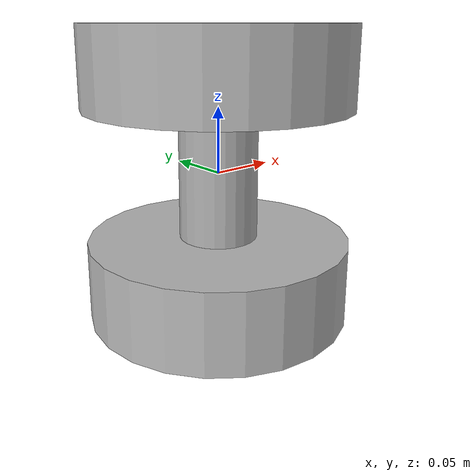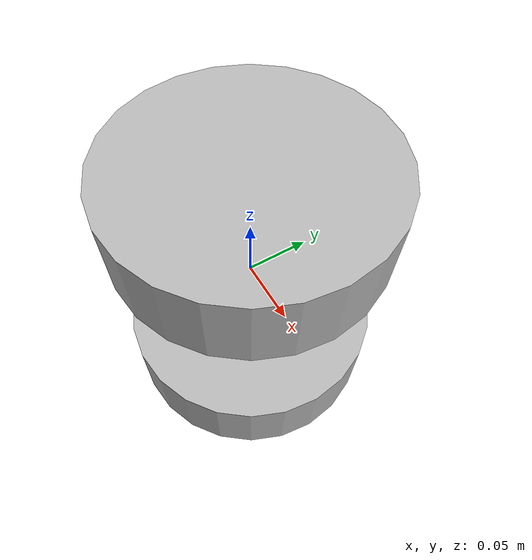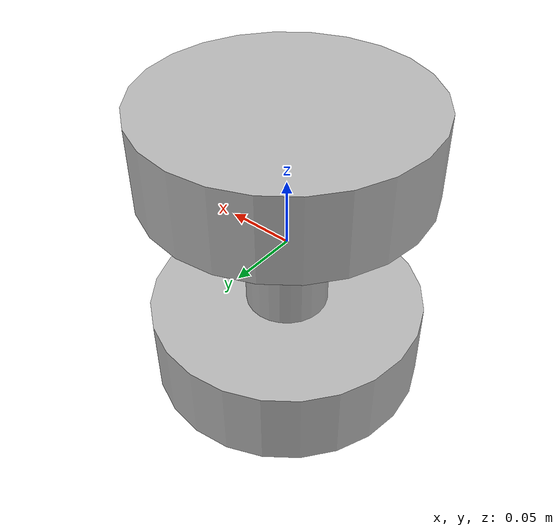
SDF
<?xml version="1.0"?>
<sdf version="1.7">
    <model name="dumbbell">
        <link name = "base_link">
            <inertial>
                <mass>0.1</mass>
                <pose>0 0 0 0 0 0</pose>
                <inertia>
                    <ixx>0.000105</ixx>
                    <ixy>0.0</ixy>
                    <ixz>0</ixz>
                    <iyy>0.000105</iyy>
                    <iyz>0.0</iyz>
                    <izz>4.5e-05</izz>
                </inertia>
            </inertial>
            <visual name = "visual">
                <pose>0 0 0 0 0 0</pose>
                <geometry>
                    <cylinder>
                        <radius>0.03</radius>
                        <length>0.1</length>
                    </cylinder>
                </geometry>
                <material>
                    <diffuse>0.7 0.7 0.7 1.0</diffuse>
                </material>
            </visual>
            <collision name = "collision">
                <pose>0 0 0 0 0 0</pose>
                <geometry>
                    <cylinder>
                        <radius>0.03</radius>
                        <length>0.1</length>
                    </cylinder>
                </geometry>
            </collision>
        </link>
        <link name = "bottom_weight">
            <pose>0 0 -0.08 0 0 0</pose>
            <inertial>
                <mass>1</mass>
                <pose>0 0 0 0 0 0</pose>
                <inertia>
                    <ixx>0.0028</ixx>
                    <ixy>0.0</ixy>
                    <ixz>0</ixz>
                    <iyy>0.0028</iyy>
                    <iyz>0.0</iyz>
                    <izz>0.005</izz>
                </inertia>
            </inertial>
            <visual name = "visual">
                <pose>0 0 0 0 0 0</pose>
                <geometry>
                    <cylinder>
                        <radius>0.1</radius>
                        <length>0.06</length>
                    </cylinder>
                    <material>
                      <diffuse>0.31 0.01 0.13 1.0</diffuse>
                    </material>
                </geometry>
            </visual>
            <collision name = "collision">
                <pose>0 0 0 0 0 0</pose>
                <geometry>
                    <cylinder>
                        <radius>0.1</radius>
                        <length>0.06</length>
                    </cylinder>
                </geometry>
            </collision>
        </link>
        <link name = "top_weight">
            <pose>0 0 0.08 0 0 0</pose>
            <inertial>
                <mass>1</mass>
                <pose>0 0 0 0 0 0</pose>
                <inertia>
                    <ixx>0.0028</ixx>
                    <ixy>0.0</ixy>
                    <ixz>0</ixz>
                    <iyy>0.0028</iyy>
                    <iyz>0.0</iyz>
                    <izz>0.005</izz>
                </inertia>
            </inertial>
            <visual name = "visual">
                <pose>0 0 0 0 0 0</pose>
                <geometry>
                    <cylinder>
                        <radius>0.1</radius>
                        <length>0.06</length>
                    </cylinder>
                    <material>
                      <diffuse>0.31 0.01 0.13 1.0</diffuse>
                    </material>
                </geometry>
            </visual>
            <collision name = "collision">
                <pose>0 0 0 0 0 0</pose>
                <geometry>
                    <cylinder>
                        <radius>0.1</radius>
                        <length>0.06</length>
                    </cylinder>
                </geometry>
            </collision>
        </link>
        <joint name="bottom_weld" type="fixed">
            <parent>base_link</parent>
            <child>bottom_weight</child>
        </joint>
        <joint name="top_weld" type="fixed">
            <parent>base_link</parent>
            <child>top_weight</child>
        </joint>
    </model>
</sdf>
